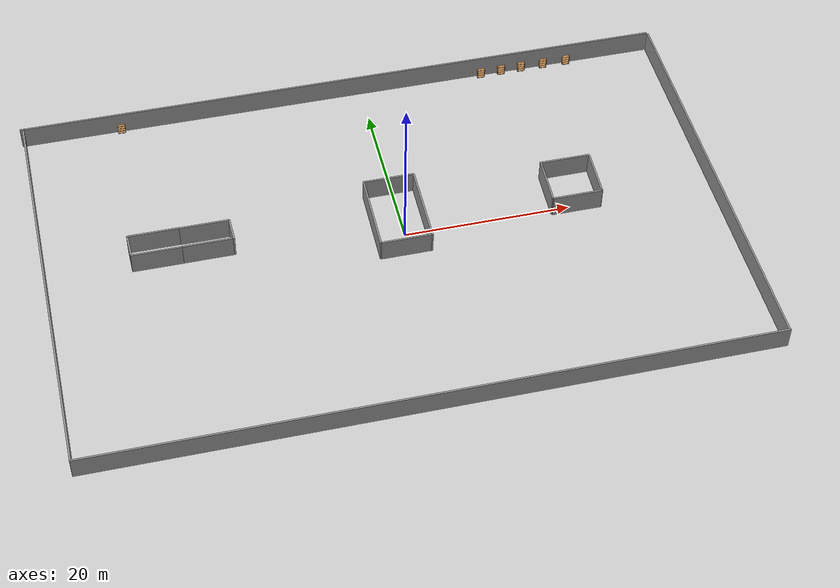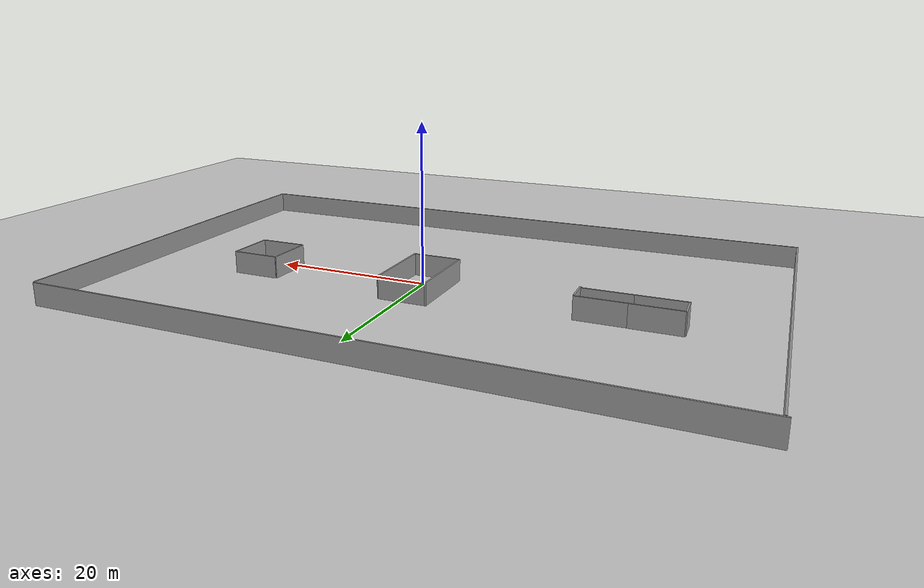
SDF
<sdf version="1.7">
 <world name="default">
  <light name="sun" type="directional">
   <pose>0 0 10 0 -0 0</pose>
   <diffuse>0.8 0.8 0.8 1</diffuse>
   <specular>0.2 0.2 0.2 1</specular>
   <attenuation>
    <range>1000</range>
    <constant>0.9</constant>
    <linear>0.01</linear>
    <quadratic>0.001</quadratic>
   </attenuation>
   <direction>-0.5 0.1 -0.9</direction>
   <spot><inner_angle>0</inner_angle><outer_angle>0</outer_angle><falloff>0</falloff></spot>
  </light>
  <model name="ground_plane">
   <static>1</static>
   <link name="link">
    <collision name="collision">
     <geometry><plane><normal>0 0 1</normal><size>100 100</size></plane></geometry>
     <surface>
      <contact><collide_bitmask>65535</collide_bitmask></contact>
      <friction><ode><mu>100</mu><mu2>50</mu2></ode></friction>
     </surface>
    </collision>
    <visual name="visual">
     <cast_shadows>0</cast_shadows>
     <geometry><plane><normal>0 0 1</normal><size>100 100</size></plane></geometry>
     <material>
      <script><uri>file://media/materials/scripts/gazebo.material</uri><name>Gazebo/Grey</name></script>
     </material>
    </visual>
   </link>
  </model>
  <gravity>0 0 -9.8</gravity>
  <magnetic_field>6e-06 2.3e-05 -4.2e-05</magnetic_field>
  <atmosphere type="adiabatic"/>
  <physics type="ode">
   <max_step_size>0.001</max_step_size>
   <real_time_factor>1</real_time_factor>
   <real_time_update_rate>1000</real_time_update_rate>
  </physics>
  <scene><ambient>0.4 0.4 0.4 1</ambient><background>0.7 0.7 0.7 1</background><shadows>1</shadows></scene>
  <spherical_coordinates>
   <surface_model>EARTH_WGS84</surface_model>
   <latitude_deg>0</latitude_deg>
   <longitude_deg>0</longitude_deg>
   <elevation>0</elevation>
   <heading_deg>0</heading_deg>
  </spherical_coordinates>
  <model name="grey_wall_long">
   <static>1</static>
   <link name="link">
    <pose>0 0 1.4 0 -0 0</pose>
    <collision name="collision"><geometry><box><size>50 0.2 2.8</size></box></geometry></collision>
    <visual name="visual">
     <cast_shadows>0</cast_shadows>
     <geometry><box><size>50 0.2 2.8</size></box></geometry>
     <material>
      <script>
       <uri>model://grey_wall_long/materials/scripts</uri>
       <uri>model://grey_wall_long/materials/textures</uri>
       <name>vrc/grey_wall_long</name>
      </script>
     </material>
    </visual>
   </link>
   <pose>-42.0584 -0.541294 0 0 0 -1.56707</pose>
  </model>
  <model name="grey_wall_long_2">
   <static>1</static>
   <link name="link">
    <pose>0 0 1.4 0 -0 0</pose>
    <collision name="collision"><geometry><box><size>80 0.2 2.8</size></box></geometry></collision>
    <visual name="visual">
     <cast_shadows>0</cast_shadows>
     <geometry><box><size>80 0.2 2.8</size></box></geometry>
     <material>
      <script>
       <uri>model://grey_wall_long_2/materials/scripts</uri>
       <uri>model://grey_wall_long_2/materials/textures</uri>
       <name>vrc/grey_wall_long_2</name>
      </script>
     </material>
    </visual>
   </link>
   <pose>-2.0449 -25.5677 0 0 -0 0</pose>
  </model>
  <model name="grey_wall_long_clone">
   <static>1</static>
   <link name="link">
    <pose>0 0 1.4 0 -0 0</pose>
    <collision name="collision"><geometry><box><size>50 0.2 2.8</size></box></geometry></collision>
    <visual name="visual">
     <cast_shadows>0</cast_shadows>
     <geometry><box><size>50 0.2 2.8</size></box></geometry>
     <material>
      <script>
       <uri>model://grey_wall_long/materials/scripts</uri>
       <uri>model://grey_wall_long/materials/textures</uri>
       <name>vrc/grey_wall_long</name>
      </script>
     </material>
    </visual>
   </link>
   <pose>37.6995 -0.475096 0 0 0 -1.56707</pose>
  </model>
  <model name="grey_wall_long_2_clone">
   <static>1</static>
   <link name="link">
    <pose>0 0 1.4 0 -0 0</pose>
    <collision name="collision"><geometry><box><size>80 0.2 2.8</size></box></geometry></collision>
    <visual name="visual">
     <cast_shadows>0</cast_shadows>
     <geometry><box><size>80 0.2 2.8</size></box></geometry>
     <material>
      <script>
       <uri>model://grey_wall_long_2/materials/scripts</uri>
       <uri>model://grey_wall_long_2/materials/textures</uri>
       <name>vrc/grey_wall_long_2</name>
      </script>
     </material>
    </visual>
   </link>
   <pose>-2.52951 24.6852 0 0 -0 0</pose>
  </model>
  <model name="grey_wall_short_2">
   <static>1</static>
   <link name="link">
    <pose>0 0 1.4 0 -0 0</pose>
    <collision name="collision"><geometry><box><size>10 0.2 2.8</size></box></geometry></collision>
    <visual name="visual">
     <cast_shadows>0</cast_shadows>
     <geometry><box><size>10 0.2 2.8</size></box></geometry>
     <material>
      <script>
       <uri>model://grey_wall_short_2/materials/scripts</uri>
       <uri>model://grey_wall_short_2/materials/textures</uri>
       <name>vrc/grey_wall_short_2</name>
      </script>
     </material>
    </visual>
   </link>
   <pose>-3.54745 2.00518 0 0 -0 1.56066</pose>
  </model>
  <model name="grey_wall_short">
   <static>1</static>
   <link name="link">
    <pose>0 0 1.4 0 -0 0</pose>
    <collision name="collision"><geometry><box><size>3 0.2 2.8</size></box></geometry></collision>
    <visual name="visual">
     <cast_shadows>0</cast_shadows>
     <geometry><box><size>3 0.2 2.8</size></box></geometry>
     <material>
      <script>
       <uri>model://grey_wall_short/materials/scripts</uri>
       <uri>model://grey_wall_short/materials/textures</uri>
       <name>vrc/grey_wall_short</name>
      </script>
     </material>
    </visual>
   </link>
   <pose>-32.0114 2.97374 0 0 0 -1.5524</pose>
  </model>
  <model name="grey_wall_media">
   <static>1</static>
   <link name="link">
    <pose>0 0 1.4 0 -0 0</pose>
    <collision name="collision"><geometry><box><size>6 0.2 2.8</size></box></geometry></collision>
    <visual name="visual">
     <cast_shadows>0</cast_shadows>
     <geometry><box><size>6 0.2 2.8</size></box></geometry>
     <material>
      <script>
       <uri>model://grey_wall_media/materials/scripts</uri>
       <uri>model://grey_wall_media/materials/textures</uri>
       <name>vrc/grey_wall_media</name>
      </script>
     </material>
    </visual>
   </link>
   <pose>-29 4.42421 0.00987 0 -0 0</pose>
  </model>
  <model name="grey_wall_media_clone">
   <static>1</static>
   <link name="link">
    <pose>0 0 1.4 0 -0 0</pose>
    <collision name="collision"><geometry><box><size>6 0.2 2.8</size></box></geometry></collision>
    <visual name="visual">
     <cast_shadows>0</cast_shadows>
     <geometry><box><size>6 0.2 2.8</size></box></geometry>
     <material>
      <script>
       <uri>model://grey_wall_media/materials/scripts</uri>
       <uri>model://grey_wall_media/materials/textures</uri>
       <name>vrc/grey_wall_media</name>
      </script>
     </material>
    </visual>
   </link>
   <pose>-23.0062 4.38382 0.00987 0 -0 0</pose>
  </model>
  <model name="grey_wall_short_clone">
   <static>1</static>
   <link name="link">
    <pose>0 0 1.4 0 -0 0</pose>
    <collision name="collision"><geometry><box><size>3 0.2 2.8</size></box></geometry></collision>
    <visual name="visual">
     <cast_shadows>0</cast_shadows>
     <geometry><box><size>3 0.2 2.8</size></box></geometry>
     <material>
      <script>
       <uri>model://grey_wall_short/materials/scripts</uri>
       <uri>model://grey_wall_short/materials/textures</uri>
       <name>vrc/grey_wall_short</name>
      </script>
     </material>
    </visual>
   </link>
   <pose>-20.0584 2.81156 0.06642 0 0 -1.5524</pose>
  </model>
  <model name="grey_wall_media_clone_0">
   <static>1</static>
   <link name="link">
    <pose>0 0 1.4 0 -0 0</pose>
    <collision name="collision"><geometry><box><size>6 0.2 2.8</size></box></geometry></collision>
    <visual name="visual">
     <cast_shadows>0</cast_shadows>
     <geometry><box><size>6 0.2 2.8</size></box></geometry>
     <material>
      <script>
       <uri>model://grey_wall_media/materials/scripts</uri>
       <uri>model://grey_wall_media/materials/textures</uri>
       <name>vrc/grey_wall_media</name>
      </script>
     </material>
    </visual>
   </link>
   <pose>-29.0686 1.44223 0.00987 0 -0 0</pose>
  </model>
  <model name="grey_wall_media_clone_1">
   <static>1</static>
   <link name="link">
    <pose>0 0 1.4 0 -0 0</pose>
    <collision name="collision"><geometry><box><size>6 0.2 2.8</size></box></geometry></collision>
    <visual name="visual">
     <cast_shadows>0</cast_shadows>
     <geometry><box><size>6 0.2 2.8</size></box></geometry>
     <material>
      <script>
       <uri>model://grey_wall_media/materials/scripts</uri>
       <uri>model://grey_wall_media/materials/textures</uri>
       <name>vrc/grey_wall_media</name>
      </script>
     </material>
    </visual>
   </link>
   <pose>-23.1024 1.45669 0.00987 0 -0 0</pose>
  </model>
  <model name="grey_wall_media_clone_2">
   <static>1</static>
   <link name="link">
    <pose>0 0 1.4 0 -0 0</pose>
    <collision name="collision"><geometry><box><size>6 0.2 2.8</size></box></geometry></collision>
    <visual name="visual">
     <cast_shadows>0</cast_shadows>
     <geometry><box><size>6 0.2 2.8</size></box></geometry>
     <material>
      <script>
       <uri>model://grey_wall_media/materials/scripts</uri>
       <uri>model://grey_wall_media/materials/textures</uri>
       <name>vrc/grey_wall_media</name>
      </script>
     </material>
    </visual>
   </link>
   <pose>-0.524154 -3.00144 0.00987 0 -0 0</pose>
  </model>
  <model name="grey_wall_media_clone_3">
   <static>1</static>
   <link name="link">
    <pose>0 0 1.4 0 -0 0</pose>
    <collision name="collision"><geometry><box><size>6 0.2 2.8</size></box></geometry></collision>
    <visual name="visual">
     <cast_shadows>0</cast_shadows>
     <geometry><box><size>6 0.2 2.8</size></box></geometry>
     <material>
      <script>
       <uri>model://grey_wall_media/materials/scripts</uri>
       <uri>model://grey_wall_media/materials/textures</uri>
       <name>vrc/grey_wall_media</name>
      </script>
     </material>
    </visual>
   </link>
   <pose>-0.415049 6.87765 0.00987 0 -0 0</pose>
  </model>
  <model name="grey_wall_short_2_clone">
   <static>1</static>
   <link name="link">
    <pose>0 0 1.4 0 -0 0</pose>
    <collision name="collision"><geometry><box><size>10 0.2 2.8</size></box></geometry></collision>
    <visual name="visual">
     <cast_shadows>0</cast_shadows>
     <geometry><box><size>10 0.2 2.8</size></box></geometry>
     <material>
      <script>
       <uri>model://grey_wall_short_2/materials/scripts</uri>
       <uri>model://grey_wall_short_2/materials/textures</uri>
       <name>vrc/grey_wall_short_2</name>
      </script>
     </material>
    </visual>
   </link>
   <pose>2.57651 1.88532 0 0 -0 1.56066</pose>
  </model>
  <model name="grey_wall_media_clone_2_clone">
   <static>1</static>
   <link name="link">
    <pose>0 0 1.4 0 -0 0</pose>
    <collision name="collision"><geometry><box><size>6 0.2 2.8</size></box></geometry></collision>
    <visual name="visual">
     <cast_shadows>0</cast_shadows>
     <geometry><box><size>6 0.2 2.8</size></box></geometry>
     <material>
      <script>
       <uri>model://grey_wall_media/materials/scripts</uri>
       <uri>model://grey_wall_media/materials/textures</uri>
       <name>vrc/grey_wall_media</name>
      </script>
     </material>
    </visual>
   </link>
   <pose>20.7771 -0.668211 0.00987 0 -0 0</pose>
  </model>
  <model name="grey_wall_media_clone_2_clone_clone">
   <static>1</static>
   <link name="link">
    <pose>0 0 1.4 0 -0 0</pose>
    <collision name="collision"><geometry><box><size>6 0.2 2.8</size></box></geometry></collision>
    <visual name="visual">
     <cast_shadows>0</cast_shadows>
     <geometry><box><size>6 0.2 2.8</size></box></geometry>
     <material>
      <script>
       <uri>model://grey_wall_media/materials/scripts</uri>
       <uri>model://grey_wall_media/materials/textures</uri>
       <name>vrc/grey_wall_media</name>
      </script>
     </material>
    </visual>
   </link>
   <pose>20.9663 5.32207 0.00987 0 -0 0</pose>
  </model>
  <model name="grey_wall_media_clone_2_clone_clone_0">
   <static>1</static>
   <link name="link">
    <pose>0 0 1.4 0 -0 0</pose>
    <collision name="collision"><geometry><box><size>6 0.2 2.8</size></box></geometry></collision>
    <visual name="visual">
     <cast_shadows>0</cast_shadows>
     <geometry><box><size>6 0.2 2.8</size></box></geometry>
     <material>
      <script>
       <uri>model://grey_wall_media/materials/scripts</uri>
       <uri>model://grey_wall_media/materials/textures</uri>
       <name>vrc/grey_wall_media</name>
      </script>
     </material>
    </visual>
   </link>
   <pose>17.8444 2.39168 0.00987 0 0 -1.60343</pose>
  </model>
  <model name="grey_wall_media_clone_2_clone_clone_0_clone">
   <static>1</static>
   <link name="link">
    <pose>0 0 1.4 0 -0 0</pose>
    <collision name="collision"><geometry><box><size>6 0.2 2.8</size></box></geometry></collision>
    <visual name="visual">
     <cast_shadows>0</cast_shadows>
     <geometry><box><size>6 0.2 2.8</size></box></geometry>
     <material>
      <script>
       <uri>model://grey_wall_media/materials/scripts</uri>
       <uri>model://grey_wall_media/materials/textures</uri>
       <name>vrc/grey_wall_media</name>
      </script>
     </material>
    </visual>
   </link>
   <pose>23.857 2.28002 0.00987 0 0 -1.60343</pose>
  </model>
  <model name="Bookshelf">
   <static>1</static>
   <link name="link">
    <inertial><mass>1</mass></inertial>
    <collision name="back">
     <pose>0 0.005 0.6 0 -0 0</pose>
     <geometry><box><size>0.9 0.01 1.2</size></box></geometry>
    </collision>
    <visual name="visual1">
     <pose>0 0.005 0.6 0 -0 0</pose>
     <geometry><box><size>0.9 0.01 1.2</size></box></geometry>
     <material>
      <diffuse>1 1 1 1</diffuse>
      <script><uri>file://media/materials/scripts/gazebo.material</uri><name>Gazebo/Wood</name></script>
      <pbr><metal><albedo_map>model://Bookshelf/bookshelf_diffuse.jpg</albedo_map></metal></pbr>
     </material>
    </visual>
    <collision name="left_side">
     <pose>0.45 -0.195 0.6 0 -0 0</pose>
     <geometry><box><size>0.02 0.4 1.2</size></box></geometry>
    </collision>
    <visual name="visual2">
     <pose>0.45 -0.195 0.6 0 -0 0</pose>
     <geometry><box><size>0.02 0.4 1.2</size></box></geometry>
     <material>
      <diffuse>1 1 1 1</diffuse>
      <script><uri>file://media/materials/scripts/gazebo.material</uri><name>Gazebo/Wood</name></script>
      <pbr><metal><albedo_map>model://Bookshelf/bookshelf_diffuse.jpg</albedo_map></metal></pbr>
     </material>
    </visual>
    <collision name="right_side">
     <pose>-0.45 -0.195 0.6 0 -0 0</pose>
     <geometry><box><size>0.02 0.4 1.2</size></box></geometry>
    </collision>
    <visual name="visual3">
     <pose>-0.45 -0.195 0.6 0 -0 0</pose>
     <geometry><box><size>0.02 0.4 1.2</size></box></geometry>
     <material>
      <diffuse>1 1 1 1</diffuse>
      <script><uri>file://media/materials/scripts/gazebo.material</uri><name>Gazebo/Wood</name></script>
      <pbr><metal><albedo_map>model://Bookshelf/bookshelf_diffuse.jpg</albedo_map></metal></pbr>
     </material>
    </visual>
    <collision name="bottom">
     <pose>0 -0.195 0.03 0 -0 0</pose>
     <geometry><box><size>0.88 0.4 0.06</size></box></geometry>
    </collision>
    <visual name="visual4">
     <pose>0 -0.195 0.03 0 -0 0</pose>
     <geometry><box><size>0.88 0.4 0.06</size></box></geometry>
     <material>
      <diffuse>1 1 1 1</diffuse>
      <script><uri>file://media/materials/scripts/gazebo.material</uri><name>Gazebo/Wood</name></script>
      <pbr><metal><albedo_map>model://Bookshelf/bookshelf_diffuse.jpg</albedo_map></metal></pbr>
     </material>
    </visual>
    <collision name="top">
     <pose>0 -0.195 1.19 0 -0 0</pose>
     <geometry><box><size>0.88 0.4 0.02</size></box></geometry>
    </collision>
    <visual name="visual5">
     <pose>0 -0.195 1.19 0 -0 0</pose>
     <geometry><box><size>0.88 0.4 0.02</size></box></geometry>
     <material>
      <diffuse>1 1 1 1</diffuse>
      <script><uri>file://media/materials/scripts/gazebo.material</uri><name>Gazebo/Wood</name></script>
      <pbr><metal><albedo_map>model://Bookshelf/bookshelf_diffuse.jpg</albedo_map></metal></pbr>
     </material>
    </visual>
    <collision name="low_shelf">
     <pose>0 -0.195 0.43 0 -0 0</pose>
     <geometry><box><size>0.88 0.4 0.02</size></box></geometry>
    </collision>
    <visual name="visual6">
     <pose>0 -0.195 0.43 0 -0 0</pose>
     <geometry><box><size>0.88 0.4 0.02</size></box></geometry>
     <material>
      <diffuse>1 1 1 1</diffuse>
      <script><uri>file://media/materials/scripts/gazebo.material</uri><name>Gazebo/Wood</name></script>
      <pbr><metal><albedo_map>model://Bookshelf/bookshelf_diffuse.jpg</albedo_map></metal></pbr>
     </material>
    </visual>
    <collision name="high_shelf">
     <pose>0 -0.195 0.8 0 -0 0</pose>
     <geometry><box><size>0.88 0.4 0.02</size></box></geometry>
    </collision>
    <visual name="visual7">
     <pose>0 -0.195 0.8 0 -0 0</pose>
     <geometry><box><size>0.88 0.4 0.02</size></box></geometry>
     <material>
      <diffuse>1 1 1 1</diffuse>
      <script><uri>file://media/materials/scripts/gazebo.material</uri><name>Gazebo/Wood</name></script>
      <pbr><metal><albedo_map>model://Bookshelf/bookshelf_diffuse.jpg</albedo_map></metal></pbr>
     </material>
    </visual>
   </link>
   <pose>-30.3238 24.6424 -0.021454 0 -0 0</pose>
  </model>
  <model name="Bookshelf_0">
   <static>1</static>
   <link name="link">
    <inertial><mass>1</mass></inertial>
    <collision name="back">
     <pose>0 0.005 0.6 0 -0 0</pose>
     <geometry><box><size>0.9 0.01 1.2</size></box></geometry>
    </collision>
    <visual name="visual1">
     <pose>0 0.005 0.6 0 -0 0</pose>
     <geometry><box><size>0.9 0.01 1.2</size></box></geometry>
     <material>
      <diffuse>1 1 1 1</diffuse>
      <script><uri>file://media/materials/scripts/gazebo.material</uri><name>Gazebo/Wood</name></script>
      <pbr><metal><albedo_map>model://Bookshelf/bookshelf_diffuse.jpg</albedo_map></metal></pbr>
     </material>
    </visual>
    <collision name="left_side">
     <pose>0.45 -0.195 0.6 0 -0 0</pose>
     <geometry><box><size>0.02 0.4 1.2</size></box></geometry>
    </collision>
    <visual name="visual2">
     <pose>0.45 -0.195 0.6 0 -0 0</pose>
     <geometry><box><size>0.02 0.4 1.2</size></box></geometry>
     <material>
      <diffuse>1 1 1 1</diffuse>
      <script><uri>file://media/materials/scripts/gazebo.material</uri><name>Gazebo/Wood</name></script>
      <pbr><metal><albedo_map>model://Bookshelf/bookshelf_diffuse.jpg</albedo_map></metal></pbr>
     </material>
    </visual>
    <collision name="right_side">
     <pose>-0.45 -0.195 0.6 0 -0 0</pose>
     <geometry><box><size>0.02 0.4 1.2</size></box></geometry>
    </collision>
    <visual name="visual3">
     <pose>-0.45 -0.195 0.6 0 -0 0</pose>
     <geometry><box><size>0.02 0.4 1.2</size></box></geometry>
     <material>
      <diffuse>1 1 1 1</diffuse>
      <script><uri>file://media/materials/scripts/gazebo.material</uri><name>Gazebo/Wood</name></script>
      <pbr><metal><albedo_map>model://Bookshelf/bookshelf_diffuse.jpg</albedo_map></metal></pbr>
     </material>
    </visual>
    <collision name="bottom">
     <pose>0 -0.195 0.03 0 -0 0</pose>
     <geometry><box><size>0.88 0.4 0.06</size></box></geometry>
    </collision>
    <visual name="visual4">
     <pose>0 -0.195 0.03 0 -0 0</pose>
     <geometry><box><size>0.88 0.4 0.06</size></box></geometry>
     <material>
      <diffuse>1 1 1 1</diffuse>
      <script><uri>file://media/materials/scripts/gazebo.material</uri><name>Gazebo/Wood</name></script>
      <pbr><metal><albedo_map>model://Bookshelf/bookshelf_diffuse.jpg</albedo_map></metal></pbr>
     </material>
    </visual>
    <collision name="top">
     <pose>0 -0.195 1.19 0 -0 0</pose>
     <geometry><box><size>0.88 0.4 0.02</size></box></geometry>
    </collision>
    <visual name="visual5">
     <pose>0 -0.195 1.19 0 -0 0</pose>
     <geometry><box><size>0.88 0.4 0.02</size></box></geometry>
     <material>
      <diffuse>1 1 1 1</diffuse>
      <script><uri>file://media/materials/scripts/gazebo.material</uri><name>Gazebo/Wood</name></script>
      <pbr><metal><albedo_map>model://Bookshelf/bookshelf_diffuse.jpg</albedo_map></metal></pbr>
     </material>
    </visual>
    <collision name="low_shelf">
     <pose>0 -0.195 0.43 0 -0 0</pose>
     <geometry><box><size>0.88 0.4 0.02</size></box></geometry>
    </collision>
    <visual name="visual6">
     <pose>0 -0.195 0.43 0 -0 0</pose>
     <geometry><box><size>0.88 0.4 0.02</size></box></geometry>
     <material>
      <diffuse>1 1 1 1</diffuse>
      <script><uri>file://media/materials/scripts/gazebo.material</uri><name>Gazebo/Wood</name></script>
      <pbr><metal><albedo_map>model://Bookshelf/bookshelf_diffuse.jpg</albedo_map></metal></pbr>
     </material>
    </visual>
    <collision name="high_shelf">
     <pose>0 -0.195 0.8 0 -0 0</pose>
     <geometry><box><size>0.88 0.4 0.02</size></box></geometry>
    </collision>
    <visual name="visual7">
     <pose>0 -0.195 0.8 0 -0 0</pose>
     <geometry><box><size>0.88 0.4 0.02</size></box></geometry>
     <material>
      <diffuse>1 1 1 1</diffuse>
      <script><uri>file://media/materials/scripts/gazebo.material</uri><name>Gazebo/Wood</name></script>
      <pbr><metal><albedo_map>model://Bookshelf/bookshelf_diffuse.jpg</albedo_map></metal></pbr>
     </material>
    </visual>
   </link>
   <pose>26.7566 24.5208 0 0 -0 0</pose>
  </model>
  <model name="Bookshelf_0_clone">
   <static>1</static>
   <link name="link">
    <inertial><mass>1</mass></inertial>
    <collision name="back">
     <pose>0 0.005 0.6 0 -0 0</pose>
     <geometry><box><size>0.9 0.01 1.2</size></box></geometry>
    </collision>
    <visual name="visual1">
     <pose>0 0.005 0.6 0 -0 0</pose>
     <geometry><box><size>0.9 0.01 1.2</size></box></geometry>
     <material>
      <diffuse>1 1 1 1</diffuse>
      <script><uri>file://media/materials/scripts/gazebo.material</uri><name>Gazebo/Wood</name></script>
      <pbr><metal><albedo_map>model://Bookshelf/bookshelf_diffuse.jpg</albedo_map></metal></pbr>
     </material>
    </visual>
    <collision name="left_side">
     <pose>0.45 -0.195 0.6 0 -0 0</pose>
     <geometry><box><size>0.02 0.4 1.2</size></box></geometry>
    </collision>
    <visual name="visual2">
     <pose>0.45 -0.195 0.6 0 -0 0</pose>
     <geometry><box><size>0.02 0.4 1.2</size></box></geometry>
     <material>
      <diffuse>1 1 1 1</diffuse>
      <script><uri>file://media/materials/scripts/gazebo.material</uri><name>Gazebo/Wood</name></script>
      <pbr><metal><albedo_map>model://Bookshelf/bookshelf_diffuse.jpg</albedo_map></metal></pbr>
     </material>
    </visual>
    <collision name="right_side">
     <pose>-0.45 -0.195 0.6 0 -0 0</pose>
     <geometry><box><size>0.02 0.4 1.2</size></box></geometry>
    </collision>
    <visual name="visual3">
     <pose>-0.45 -0.195 0.6 0 -0 0</pose>
     <geometry><box><size>0.02 0.4 1.2</size></box></geometry>
     <material>
      <diffuse>1 1 1 1</diffuse>
      <script><uri>file://media/materials/scripts/gazebo.material</uri><name>Gazebo/Wood</name></script>
      <pbr><metal><albedo_map>model://Bookshelf/bookshelf_diffuse.jpg</albedo_map></metal></pbr>
     </material>
    </visual>
    <collision name="bottom">
     <pose>0 -0.195 0.03 0 -0 0</pose>
     <geometry><box><size>0.88 0.4 0.06</size></box></geometry>
    </collision>
    <visual name="visual4">
     <pose>0 -0.195 0.03 0 -0 0</pose>
     <geometry><box><size>0.88 0.4 0.06</size></box></geometry>
     <material>
      <diffuse>1 1 1 1</diffuse>
      <script><uri>file://media/materials/scripts/gazebo.material</uri><name>Gazebo/Wood</name></script>
      <pbr><metal><albedo_map>model://Bookshelf/bookshelf_diffuse.jpg</albedo_map></metal></pbr>
     </material>
    </visual>
    <collision name="top">
     <pose>0 -0.195 1.19 0 -0 0</pose>
     <geometry><box><size>0.88 0.4 0.02</size></box></geometry>
    </collision>
    <visual name="visual5">
     <pose>0 -0.195 1.19 0 -0 0</pose>
     <geometry><box><size>0.88 0.4 0.02</size></box></geometry>
     <material>
      <diffuse>1 1 1 1</diffuse>
      <script><uri>file://media/materials/scripts/gazebo.material</uri><name>Gazebo/Wood</name></script>
      <pbr><metal><albedo_map>model://Bookshelf/bookshelf_diffuse.jpg</albedo_map></metal></pbr>
     </material>
    </visual>
    <collision name="low_shelf">
     <pose>0 -0.195 0.43 0 -0 0</pose>
     <geometry><box><size>0.88 0.4 0.02</size></box></geometry>
    </collision>
    <visual name="visual6">
     <pose>0 -0.195 0.43 0 -0 0</pose>
     <geometry><box><size>0.88 0.4 0.02</size></box></geometry>
     <material>
      <diffuse>1 1 1 1</diffuse>
      <script><uri>file://media/materials/scripts/gazebo.material</uri><name>Gazebo/Wood</name></script>
      <pbr><metal><albedo_map>model://Bookshelf/bookshelf_diffuse.jpg</albedo_map></metal></pbr>
     </material>
    </visual>
    <collision name="high_shelf">
     <pose>0 -0.195 0.8 0 -0 0</pose>
     <geometry><box><size>0.88 0.4 0.02</size></box></geometry>
    </collision>
    <visual name="visual7">
     <pose>0 -0.195 0.8 0 -0 0</pose>
     <geometry><box><size>0.88 0.4 0.02</size></box></geometry>
     <material>
      <diffuse>1 1 1 1</diffuse>
      <script><uri>file://media/materials/scripts/gazebo.material</uri><name>Gazebo/Wood</name></script>
      <pbr><metal><albedo_map>model://Bookshelf/bookshelf_diffuse.jpg</albedo_map></metal></pbr>
     </material>
    </visual>
   </link>
   <pose>23.7282 24.54 0 0 -0 0</pose>
  </model>
  <model name="Bookshelf_0_clone_0">
   <static>1</static>
   <link name="link">
    <inertial><mass>1</mass></inertial>
    <collision name="back">
     <pose>0 0.005 0.6 0 -0 0</pose>
     <geometry><box><size>0.9 0.01 1.2</size></box></geometry>
    </collision>
    <visual name="visual1">
     <pose>0 0.005 0.6 0 -0 0</pose>
     <geometry><box><size>0.9 0.01 1.2</size></box></geometry>
     <material>
      <diffuse>1 1 1 1</diffuse>
      <script><uri>file://media/materials/scripts/gazebo.material</uri><name>Gazebo/Wood</name></script>
      <pbr><metal><albedo_map>model://Bookshelf/bookshelf_diffuse.jpg</albedo_map></metal></pbr>
     </material>
    </visual>
    <collision name="left_side">
     <pose>0.45 -0.195 0.6 0 -0 0</pose>
     <geometry><box><size>0.02 0.4 1.2</size></box></geometry>
    </collision>
    <visual name="visual2">
     <pose>0.45 -0.195 0.6 0 -0 0</pose>
     <geometry><box><size>0.02 0.4 1.2</size></box></geometry>
     <material>
      <diffuse>1 1 1 1</diffuse>
      <script><uri>file://media/materials/scripts/gazebo.material</uri><name>Gazebo/Wood</name></script>
      <pbr><metal><albedo_map>model://Bookshelf/bookshelf_diffuse.jpg</albedo_map></metal></pbr>
     </material>
    </visual>
    <collision name="right_side">
     <pose>-0.45 -0.195 0.6 0 -0 0</pose>
     <geometry><box><size>0.02 0.4 1.2</size></box></geometry>
    </collision>
    <visual name="visual3">
     <pose>-0.45 -0.195 0.6 0 -0 0</pose>
     <geometry><box><size>0.02 0.4 1.2</size></box></geometry>
     <material>
      <diffuse>1 1 1 1</diffuse>
      <script><uri>file://media/materials/scripts/gazebo.material</uri><name>Gazebo/Wood</name></script>
      <pbr><metal><albedo_map>model://Bookshelf/bookshelf_diffuse.jpg</albedo_map></metal></pbr>
     </material>
    </visual>
    <collision name="bottom">
     <pose>0 -0.195 0.03 0 -0 0</pose>
     <geometry><box><size>0.88 0.4 0.06</size></box></geometry>
    </collision>
    <visual name="visual4">
     <pose>0 -0.195 0.03 0 -0 0</pose>
     <geometry><box><size>0.88 0.4 0.06</size></box></geometry>
     <material>
      <diffuse>1 1 1 1</diffuse>
      <script><uri>file://media/materials/scripts/gazebo.material</uri><name>Gazebo/Wood</name></script>
      <pbr><metal><albedo_map>model://Bookshelf/bookshelf_diffuse.jpg</albedo_map></metal></pbr>
     </material>
    </visual>
    <collision name="top">
     <pose>0 -0.195 1.19 0 -0 0</pose>
     <geometry><box><size>0.88 0.4 0.02</size></box></geometry>
    </collision>
    <visual name="visual5">
     <pose>0 -0.195 1.19 0 -0 0</pose>
     <geometry><box><size>0.88 0.4 0.02</size></box></geometry>
     <material>
      <diffuse>1 1 1 1</diffuse>
      <script><uri>file://media/materials/scripts/gazebo.material</uri><name>Gazebo/Wood</name></script>
      <pbr><metal><albedo_map>model://Bookshelf/bookshelf_diffuse.jpg</albedo_map></metal></pbr>
     </material>
    </visual>
    <collision name="low_shelf">
     <pose>0 -0.195 0.43 0 -0 0</pose>
     <geometry><box><size>0.88 0.4 0.02</size></box></geometry>
    </collision>
    <visual name="visual6">
     <pose>0 -0.195 0.43 0 -0 0</pose>
     <geometry><box><size>0.88 0.4 0.02</size></box></geometry>
     <material>
      <diffuse>1 1 1 1</diffuse>
      <script><uri>file://media/materials/scripts/gazebo.material</uri><name>Gazebo/Wood</name></script>
      <pbr><metal><albedo_map>model://Bookshelf/bookshelf_diffuse.jpg</albedo_map></metal></pbr>
     </material>
    </visual>
    <collision name="high_shelf">
     <pose>0 -0.195 0.8 0 -0 0</pose>
     <geometry><box><size>0.88 0.4 0.02</size></box></geometry>
    </collision>
    <visual name="visual7">
     <pose>0 -0.195 0.8 0 -0 0</pose>
     <geometry><box><size>0.88 0.4 0.02</size></box></geometry>
     <material>
      <diffuse>1 1 1 1</diffuse>
      <script><uri>file://media/materials/scripts/gazebo.material</uri><name>Gazebo/Wood</name></script>
      <pbr><metal><albedo_map>model://Bookshelf/bookshelf_diffuse.jpg</albedo_map></metal></pbr>
     </material>
    </visual>
   </link>
   <pose>20.8419 24.5504 0 0 -0 0</pose>
  </model>
  <model name="Bookshelf_0_clone_1">
   <static>1</static>
   <link name="link">
    <inertial><mass>1</mass></inertial>
    <collision name="back">
     <pose>0 0.005 0.6 0 -0 0</pose>
     <geometry><box><size>0.9 0.01 1.2</size></box></geometry>
    </collision>
    <visual name="visual1">
     <pose>0 0.005 0.6 0 -0 0</pose>
     <geometry><box><size>0.9 0.01 1.2</size></box></geometry>
     <material>
      <diffuse>1 1 1 1</diffuse>
      <script><uri>file://media/materials/scripts/gazebo.material</uri><name>Gazebo/Wood</name></script>
      <pbr><metal><albedo_map>model://Bookshelf/bookshelf_diffuse.jpg</albedo_map></metal></pbr>
     </material>
    </visual>
    <collision name="left_side">
     <pose>0.45 -0.195 0.6 0 -0 0</pose>
     <geometry><box><size>0.02 0.4 1.2</size></box></geometry>
    </collision>
    <visual name="visual2">
     <pose>0.45 -0.195 0.6 0 -0 0</pose>
     <geometry><box><size>0.02 0.4 1.2</size></box></geometry>
     <material>
      <diffuse>1 1 1 1</diffuse>
      <script><uri>file://media/materials/scripts/gazebo.material</uri><name>Gazebo/Wood</name></script>
      <pbr><metal><albedo_map>model://Bookshelf/bookshelf_diffuse.jpg</albedo_map></metal></pbr>
     </material>
    </visual>
    <collision name="right_side">
     <pose>-0.45 -0.195 0.6 0 -0 0</pose>
     <geometry><box><size>0.02 0.4 1.2</size></box></geometry>
    </collision>
    <visual name="visual3">
     <pose>-0.45 -0.195 0.6 0 -0 0</pose>
     <geometry><box><size>0.02 0.4 1.2</size></box></geometry>
     <material>
      <diffuse>1 1 1 1</diffuse>
      <script><uri>file://media/materials/scripts/gazebo.material</uri><name>Gazebo/Wood</name></script>
      <pbr><metal><albedo_map>model://Bookshelf/bookshelf_diffuse.jpg</albedo_map></metal></pbr>
     </material>
    </visual>
    <collision name="bottom">
     <pose>0 -0.195 0.03 0 -0 0</pose>
     <geometry><box><size>0.88 0.4 0.06</size></box></geometry>
    </collision>
    <visual name="visual4">
     <pose>0 -0.195 0.03 0 -0 0</pose>
     <geometry><box><size>0.88 0.4 0.06</size></box></geometry>
     <material>
      <diffuse>1 1 1 1</diffuse>
      <script><uri>file://media/materials/scripts/gazebo.material</uri><name>Gazebo/Wood</name></script>
      <pbr><metal><albedo_map>model://Bookshelf/bookshelf_diffuse.jpg</albedo_map></metal></pbr>
     </material>
    </visual>
    <collision name="top">
     <pose>0 -0.195 1.19 0 -0 0</pose>
     <geometry><box><size>0.88 0.4 0.02</size></box></geometry>
    </collision>
    <visual name="visual5">
     <pose>0 -0.195 1.19 0 -0 0</pose>
     <geometry><box><size>0.88 0.4 0.02</size></box></geometry>
     <material>
      <diffuse>1 1 1 1</diffuse>
      <script><uri>file://media/materials/scripts/gazebo.material</uri><name>Gazebo/Wood</name></script>
      <pbr><metal><albedo_map>model://Bookshelf/bookshelf_diffuse.jpg</albedo_map></metal></pbr>
     </material>
    </visual>
    <collision name="low_shelf">
     <pose>0 -0.195 0.43 0 -0 0</pose>
     <geometry><box><size>0.88 0.4 0.02</size></box></geometry>
    </collision>
    <visual name="visual6">
     <pose>0 -0.195 0.43 0 -0 0</pose>
     <geometry><box><size>0.88 0.4 0.02</size></box></geometry>
     <material>
      <diffuse>1 1 1 1</diffuse>
      <script><uri>file://media/materials/scripts/gazebo.material</uri><name>Gazebo/Wood</name></script>
      <pbr><metal><albedo_map>model://Bookshelf/bookshelf_diffuse.jpg</albedo_map></metal></pbr>
     </material>
    </visual>
    <collision name="high_shelf">
     <pose>0 -0.195 0.8 0 -0 0</pose>
     <geometry><box><size>0.88 0.4 0.02</size></box></geometry>
    </collision>
    <visual name="visual7">
     <pose>0 -0.195 0.8 0 -0 0</pose>
     <geometry><box><size>0.88 0.4 0.02</size></box></geometry>
     <material>
      <diffuse>1 1 1 1</diffuse>
      <script><uri>file://media/materials/scripts/gazebo.material</uri><name>Gazebo/Wood</name></script>
      <pbr><metal><albedo_map>model://Bookshelf/bookshelf_diffuse.jpg</albedo_map></metal></pbr>
     </material>
    </visual>
   </link>
   <pose>18.2097 24.5275 0 0 -0 0</pose>
  </model>
  <model name="Bookshelf_0_clone_2">
   <static>1</static>
   <link name="link">
    <inertial><mass>1</mass></inertial>
    <collision name="back">
     <pose>0 0.005 0.6 0 -0 0</pose>
     <geometry><box><size>0.9 0.01 1.2</size></box></geometry>
    </collision>
    <visual name="visual1">
     <pose>0 0.005 0.6 0 -0 0</pose>
     <geometry><box><size>0.9 0.01 1.2</size></box></geometry>
     <material>
      <diffuse>1 1 1 1</diffuse>
      <script><uri>file://media/materials/scripts/gazebo.material</uri><name>Gazebo/Wood</name></script>
      <pbr><metal><albedo_map>model://Bookshelf/bookshelf_diffuse.jpg</albedo_map></metal></pbr>
     </material>
    </visual>
    <collision name="left_side">
     <pose>0.45 -0.195 0.6 0 -0 0</pose>
     <geometry><box><size>0.02 0.4 1.2</size></box></geometry>
    </collision>
    <visual name="visual2">
     <pose>0.45 -0.195 0.6 0 -0 0</pose>
     <geometry><box><size>0.02 0.4 1.2</size></box></geometry>
     <material>
      <diffuse>1 1 1 1</diffuse>
      <script><uri>file://media/materials/scripts/gazebo.material</uri><name>Gazebo/Wood</name></script>
      <pbr><metal><albedo_map>model://Bookshelf/bookshelf_diffuse.jpg</albedo_map></metal></pbr>
     </material>
    </visual>
    <collision name="right_side">
     <pose>-0.45 -0.195 0.6 0 -0 0</pose>
     <geometry><box><size>0.02 0.4 1.2</size></box></geometry>
    </collision>
    <visual name="visual3">
     <pose>-0.45 -0.195 0.6 0 -0 0</pose>
     <geometry><box><size>0.02 0.4 1.2</size></box></geometry>
     <material>
      <diffuse>1 1 1 1</diffuse>
      <script><uri>file://media/materials/scripts/gazebo.material</uri><name>Gazebo/Wood</name></script>
      <pbr><metal><albedo_map>model://Bookshelf/bookshelf_diffuse.jpg</albedo_map></metal></pbr>
     </material>
    </visual>
    <collision name="bottom">
     <pose>0 -0.195 0.03 0 -0 0</pose>
     <geometry><box><size>0.88 0.4 0.06</size></box></geometry>
    </collision>
    <visual name="visual4">
     <pose>0 -0.195 0.03 0 -0 0</pose>
     <geometry><box><size>0.88 0.4 0.06</size></box></geometry>
     <material>
      <diffuse>1 1 1 1</diffuse>
      <script><uri>file://media/materials/scripts/gazebo.material</uri><name>Gazebo/Wood</name></script>
      <pbr><metal><albedo_map>model://Bookshelf/bookshelf_diffuse.jpg</albedo_map></metal></pbr>
     </material>
    </visual>
    <collision name="top">
     <pose>0 -0.195 1.19 0 -0 0</pose>
     <geometry><box><size>0.88 0.4 0.02</size></box></geometry>
    </collision>
    <visual name="visual5">
     <pose>0 -0.195 1.19 0 -0 0</pose>
     <geometry><box><size>0.88 0.4 0.02</size></box></geometry>
     <material>
      <diffuse>1 1 1 1</diffuse>
      <script><uri>file://media/materials/scripts/gazebo.material</uri><name>Gazebo/Wood</name></script>
      <pbr><metal><albedo_map>model://Bookshelf/bookshelf_diffuse.jpg</albedo_map></metal></pbr>
     </material>
    </visual>
    <collision name="low_shelf">
     <pose>0 -0.195 0.43 0 -0 0</pose>
     <geometry><box><size>0.88 0.4 0.02</size></box></geometry>
    </collision>
    <visual name="visual6">
     <pose>0 -0.195 0.43 0 -0 0</pose>
     <geometry><box><size>0.88 0.4 0.02</size></box></geometry>
     <material>
      <diffuse>1 1 1 1</diffuse>
      <script><uri>file://media/materials/scripts/gazebo.material</uri><name>Gazebo/Wood</name></script>
      <pbr><metal><albedo_map>model://Bookshelf/bookshelf_diffuse.jpg</albedo_map></metal></pbr>
     </material>
    </visual>
    <collision name="high_shelf">
     <pose>0 -0.195 0.8 0 -0 0</pose>
     <geometry><box><size>0.88 0.4 0.02</size></box></geometry>
    </collision>
    <visual name="visual7">
     <pose>0 -0.195 0.8 0 -0 0</pose>
     <geometry><box><size>0.88 0.4 0.02</size></box></geometry>
     <material>
      <diffuse>1 1 1 1</diffuse>
      <script><uri>file://media/materials/scripts/gazebo.material</uri><name>Gazebo/Wood</name></script>
      <pbr><metal><albedo_map>model://Bookshelf/bookshelf_diffuse.jpg</albedo_map></metal></pbr>
     </material>
    </visual>
   </link>
   <pose>15.566 24.5124 0 0 -0 0</pose>
  </model>
 </world>
</sdf>
